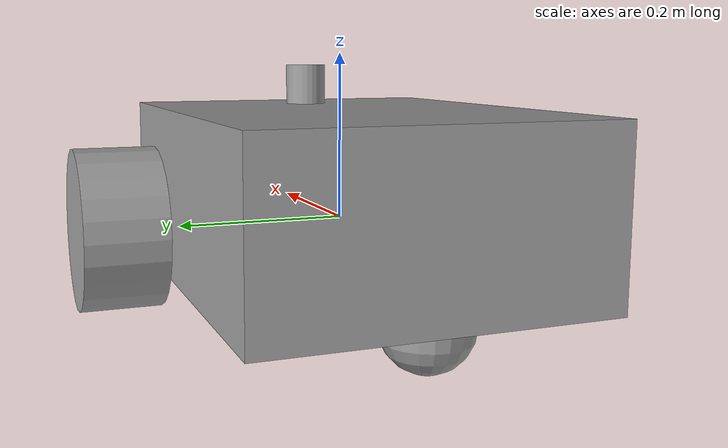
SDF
<?xml version='1.0'?>
<sdf version='1.7'>
  <model name='robot'>
    <link name='link_2'>
      <inertial>
        <mass>1</mass>
        <inertia>
          <ixx>0.145833</ixx>
          <ixy>0</ixy>
          <ixz>0</ixz>
          <iyy>0.145833</iyy>
          <iyz>0</iyz>
          <izz>0.125</izz>
        </inertia>
        <pose>0 0 0 0 -0 0</pose>
      </inertial>
      <pose>0.058 -0.241013 -0.015 1.5707 -0 0</pose>
      <gravity>1</gravity>
      <self_collide>0</self_collide>
      <kinematic>0</kinematic>
      <enable_wind>0</enable_wind>
      <visual name='visual'>
        <pose>0 0 0 0 -0 0</pose>
        <geometry>
          <cylinder>
            <radius>0.1</radius>
            <length>0.1</length>
          </cylinder>
        </geometry>
        <material>
          <lighting>1</lighting>
          <script>
            <uri>file://media/materials/scripts/gazebo.material</uri>
            <name>Gazebo/Black</name>
          </script>
          <shader type='pixel'>
            <normal_map>__default__</normal_map>
          </shader>
          <ambient>0.3 0.3 0.3 1</ambient>
          <diffuse>0.7 0.7 0.7 1</diffuse>
          <specular>0.01 0.01 0.01 1</specular>
          <emissive>0 0 0 1</emissive>
        </material>
        <transparency>0</transparency>
        <cast_shadows>1</cast_shadows>
      </visual>
      <collision name='collision'>
        <laser_retro>0</laser_retro>
        <max_contacts>10</max_contacts>
        <pose>0 0 0 0 -0 0</pose>
        <geometry>
          <cylinder>
            <radius>0.1</radius>
            <length>0.1</length>
          </cylinder>
        </geometry>
        <surface>
          <friction>
            <ode>
              <mu>1</mu>
              <mu2>1</mu2>
              <fdir1>0 0 0</fdir1>
              <slip1>0</slip1>
              <slip2>0</slip2>
            </ode>
            <torsional>
              <coefficient>1</coefficient>
              <patch_radius>0</patch_radius>
              <surface_radius>0</surface_radius>
              <use_patch_radius>1</use_patch_radius>
              <ode>
                <slip>0</slip>
              </ode>
            </torsional>
          </friction>
          <bounce>
            <restitution_coefficient>0</restitution_coefficient>
            <threshold>1e+06</threshold>
          </bounce>
          <contact>
            <collide_without_contact>0</collide_without_contact>
            <collide_without_contact_bitmask>1</collide_without_contact_bitmask>
            <collide_bitmask>1</collide_bitmask>
            <ode>
              <soft_cfm>0</soft_cfm>
              <soft_erp>0.2</soft_erp>
              <kp>1e+13</kp>
              <kd>1</kd>
              <max_vel>0.01</max_vel>
              <min_depth>0</min_depth>
            </ode>
            <bullet>
              <split_impulse>1</split_impulse>
              <split_impulse_penetration_threshold>-0.01</split_impulse_penetration_threshold>
              <soft_cfm>0</soft_cfm>
              <soft_erp>0.2</soft_erp>
              <kp>1e+13</kp>
              <kd>1</kd>
            </bullet>
          </contact>
        </surface>
      </collision>
    </link>
    <link name='link_2_clone'>
      <inertial>
        <mass>1</mass>
        <inertia>
          <ixx>0.145833</ixx>
          <ixy>0</ixy>
          <ixz>0</ixz>
          <iyy>0.145833</iyy>
          <iyz>0</iyz>
          <izz>0.125</izz>
        </inertia>
        <pose>0 0 0 0 -0 0</pose>
      </inertial>
      <pose>0.098 0.25901 -0.015 1.5707 -0 0</pose>
      <gravity>1</gravity>
      <self_collide>0</self_collide>
      <kinematic>0</kinematic>
      <enable_wind>0</enable_wind>
      <visual name='visual'>
        <pose>0 0 0 0 -0 0</pose>
        <geometry>
          <cylinder>
            <radius>0.1</radius>
            <length>0.1</length>
          </cylinder>
        </geometry>
        <material>
          <lighting>1</lighting>
          <script>
            <uri>file://media/materials/scripts/gazebo.material</uri>
            <name>Gazebo/Grey</name>
          </script>
          <shader type='pixel'>
            <normal_map>__default__</normal_map>
          </shader>
          <ambient>0.3 0.3 0.3 1</ambient>
          <diffuse>0.7 0.7 0.7 1</diffuse>
          <specular>0.01 0.01 0.01 1</specular>
          <emissive>0 0 0 1</emissive>
        </material>
        <transparency>0</transparency>
        <cast_shadows>1</cast_shadows>
      </visual>
      <collision name='collision'>
        <laser_retro>0</laser_retro>
        <max_contacts>10</max_contacts>
        <pose>0 0 0 0 -0 0</pose>
        <geometry>
          <cylinder>
            <radius>0.1</radius>
            <length>0.1</length>
          </cylinder>
        </geometry>
        <surface>
          <friction>
            <ode>
              <mu>1</mu>
              <mu2>1</mu2>
              <fdir1>0 0 0</fdir1>
              <slip1>0</slip1>
              <slip2>0</slip2>
            </ode>
            <torsional>
              <coefficient>1</coefficient>
              <patch_radius>0</patch_radius>
              <surface_radius>0</surface_radius>
              <use_patch_radius>1</use_patch_radius>
              <ode>
                <slip>0</slip>
              </ode>
            </torsional>
          </friction>
          <bounce>
            <restitution_coefficient>0</restitution_coefficient>
            <threshold>1e+06</threshold>
          </bounce>
          <contact>
            <collide_without_contact>0</collide_without_contact>
            <collide_without_contact_bitmask>1</collide_without_contact_bitmask>
            <collide_bitmask>1</collide_bitmask>
            <ode>
              <soft_cfm>0</soft_cfm>
              <soft_erp>0.2</soft_erp>
              <kp>1e+13</kp>
              <kd>1</kd>
              <max_vel>0.01</max_vel>
              <min_depth>0</min_depth>
            </ode>
            <bullet>
              <split_impulse>1</split_impulse>
              <split_impulse_penetration_threshold>-0.01</split_impulse_penetration_threshold>
              <soft_cfm>0</soft_cfm>
              <soft_erp>0.2</soft_erp>
              <kp>1e+13</kp>
              <kd>1</kd>
            </bullet>
          </contact>
        </surface>
      </collision>
    </link>
    <link name='link_3'>
      <inertial>
        <mass>1</mass>
        <inertia>
          <ixx>0.145833</ixx>
          <ixy>0</ixy>
          <ixz>0</ixz>
          <iyy>0.145833</iyy>
          <iyz>0</iyz>
          <izz>0.125</izz>
        </inertia>
        <pose>0 0 0 0 -0 0</pose>
      </inertial>
      <pose>0.098 0.009001 0.16 0 -0 0</pose>
      <gravity>1</gravity>
      <self_collide>0</self_collide>
      <kinematic>0</kinematic>
      <enable_wind>0</enable_wind>
      <visual name='visual'>
        <pose>0 0 0 0 -0 0</pose>
        <geometry>
          <cylinder>
            <radius>0.025</radius>
            <length>0.05</length>
          </cylinder>
        </geometry>
        <material>
          <lighting>1</lighting>
          <script>
            <uri>file://media/materials/scripts/gazebo.material</uri>
            <name>Gazebo/Grey</name>
          </script>
          <shader type='pixel'>
            <normal_map>__default__</normal_map>
          </shader>
          <ambient>0.3 0.3 0.3 1</ambient>
          <diffuse>0.7 0.7 0.7 1</diffuse>
          <specular>0.01 0.01 0.01 1</specular>
          <emissive>0 0 0 1</emissive>
        </material>
        <transparency>0</transparency>
        <cast_shadows>1</cast_shadows>
      </visual>
      <collision name='collision'>
        <laser_retro>0</laser_retro>
        <max_contacts>10</max_contacts>
        <pose>0 0 0 0 -0 0</pose>
        <geometry>
          <cylinder>
            <radius>0.025</radius>
            <length>0.05</length>
          </cylinder>
        </geometry>
        <surface>
          <friction>
            <ode>
              <mu>1</mu>
              <mu2>1</mu2>
              <fdir1>0 0 0</fdir1>
              <slip1>0</slip1>
              <slip2>0</slip2>
            </ode>
            <torsional>
              <coefficient>1</coefficient>
              <patch_radius>0</patch_radius>
              <surface_radius>0</surface_radius>
              <use_patch_radius>1</use_patch_radius>
              <ode>
                <slip>0</slip>
              </ode>
            </torsional>
          </friction>
          <bounce>
            <restitution_coefficient>0</restitution_coefficient>
            <threshold>1e+06</threshold>
          </bounce>
          <contact>
            <collide_without_contact>0</collide_without_contact>
            <collide_without_contact_bitmask>1</collide_without_contact_bitmask>
            <collide_bitmask>1</collide_bitmask>
            <ode>
              <soft_cfm>0</soft_cfm>
              <soft_erp>0.2</soft_erp>
              <kp>1e+13</kp>
              <kd>1</kd>
              <max_vel>0.01</max_vel>
              <min_depth>0</min_depth>
            </ode>
            <bullet>
              <split_impulse>1</split_impulse>
              <split_impulse_penetration_threshold>-0.01</split_impulse_penetration_threshold>
              <soft_cfm>0</soft_cfm>
              <soft_erp>0.2</soft_erp>
              <kp>1e+13</kp>
              <kd>1</kd>
            </bullet>
          </contact>
        </surface>
      </collision>
    </link>
    <link name='link_4'>
      <inertial>
        <mass>1</mass>
        <inertia>
          <ixx>0.166667</ixx>
          <ixy>0</ixy>
          <ixz>0</ixz>
          <iyy>0.166667</iyy>
          <iyz>0</iyz>
          <izz>0.166667</izz>
        </inertia>
        <pose>0 0 0 0 -0 0</pose>
      </inertial>
      <pose>-0.052 0.009001 0.035 0 -0 0</pose>
      <gravity>1</gravity>
      <self_collide>0</self_collide>
      <kinematic>0</kinematic>
      <enable_wind>0</enable_wind>
      <visual name='visual'>
        <pose>0 0 0 0 -0 0</pose>
        <geometry>
          <box>
            <size>0.5 0.4 0.2</size>
          </box>
        </geometry>
        <material>
          <lighting>1</lighting>
          <script>
            <uri>file://media/materials/scripts/gazebo.material</uri>
            <name>Gazebo/Grey</name>
          </script>
          <shader type='pixel'>
            <normal_map>__default__</normal_map>
          </shader>
          <ambient>0.3 0.3 0.3 1</ambient>
          <diffuse>0.7 0.7 0.7 1</diffuse>
          <specular>0.01 0.01 0.01 1</specular>
          <emissive>0 0 0 1</emissive>
        </material>
        <transparency>0</transparency>
        <cast_shadows>1</cast_shadows>
      </visual>
      <collision name='collision'>
        <laser_retro>0</laser_retro>
        <max_contacts>10</max_contacts>
        <pose>0 0 0 0 -0 0</pose>
        <geometry>
          <box>
            <size>0.5 0.4 0.2</size>
          </box>
        </geometry>
        <surface>
          <friction>
            <ode>
              <mu>1</mu>
              <mu2>1</mu2>
              <fdir1>0 0 0</fdir1>
              <slip1>0</slip1>
              <slip2>0</slip2>
            </ode>
            <torsional>
              <coefficient>1</coefficient>
              <patch_radius>0</patch_radius>
              <surface_radius>0</surface_radius>
              <use_patch_radius>1</use_patch_radius>
              <ode>
                <slip>0</slip>
              </ode>
            </torsional>
          </friction>
          <bounce>
            <restitution_coefficient>0</restitution_coefficient>
            <threshold>1e+06</threshold>
          </bounce>
          <contact>
            <collide_without_contact>0</collide_without_contact>
            <collide_without_contact_bitmask>1</collide_without_contact_bitmask>
            <collide_bitmask>1</collide_bitmask>
            <ode>
              <soft_cfm>0</soft_cfm>
              <soft_erp>0.2</soft_erp>
              <kp>1e+13</kp>
              <kd>1</kd>
              <max_vel>0.01</max_vel>
              <min_depth>0</min_depth>
            </ode>
            <bullet>
              <split_impulse>1</split_impulse>
              <split_impulse_penetration_threshold>-0.01</split_impulse_penetration_threshold>
              <soft_cfm>0</soft_cfm>
              <soft_erp>0.2</soft_erp>
              <kp>1e+13</kp>
              <kd>1</kd>
            </bullet>
          </contact>
        </surface>
      </collision>
    </link>
    <link name='link_5'>
      <inertial>
        <mass>1</mass>
        <inertia>
          <ixx>0.1</ixx>
          <ixy>0</ixy>
          <ixz>0</ixz>
          <iyy>0.1</iyy>
          <iyz>0</iyz>
          <izz>0.1</izz>
        </inertia>
        <pose>0 0 0 0 -0 0</pose>
      </inertial>
      <pose>-0.252 0.009001 -0.065 0 -0 0</pose>
      <gravity>1</gravity>
      <self_collide>0</self_collide>
      <kinematic>0</kinematic>
      <enable_wind>0</enable_wind>
      <visual name='visual'>
        <pose>0 0 0 0 -0 0</pose>
        <geometry>
          <sphere>
            <radius>0.05</radius>
          </sphere>
        </geometry>
        <material>
          <lighting>1</lighting>
          <script>
            <uri>file://media/materials/scripts/gazebo.material</uri>
            <name>Gazebo/Grey</name>
          </script>
          <shader type='pixel'>
            <normal_map>__default__</normal_map>
          </shader>
          <ambient>0.3 0.3 0.3 1</ambient>
          <diffuse>0.7 0.7 0.7 1</diffuse>
          <specular>0.01 0.01 0.01 1</specular>
          <emissive>0 0 0 1</emissive>
        </material>
        <transparency>0</transparency>
        <cast_shadows>1</cast_shadows>
      </visual>
      <collision name='collision'>
        <laser_retro>0</laser_retro>
        <max_contacts>10</max_contacts>
        <pose>0 0 0 0 -0 0</pose>
        <geometry>
          <sphere>
            <radius>0.05</radius>
          </sphere>
        </geometry>
        <surface>
          <friction>
            <ode>
              <mu>1</mu>
              <mu2>1</mu2>
              <fdir1>0 0 0</fdir1>
              <slip1>0</slip1>
              <slip2>0</slip2>
            </ode>
            <torsional>
              <coefficient>1</coefficient>
              <patch_radius>0</patch_radius>
              <surface_radius>0</surface_radius>
              <use_patch_radius>1</use_patch_radius>
              <ode>
                <slip>0</slip>
              </ode>
            </torsional>
          </friction>
          <bounce>
            <restitution_coefficient>0</restitution_coefficient>
            <threshold>1e+06</threshold>
          </bounce>
          <contact>
            <collide_without_contact>0</collide_without_contact>
            <collide_without_contact_bitmask>1</collide_without_contact_bitmask>
            <collide_bitmask>1</collide_bitmask>
            <ode>
              <soft_cfm>0</soft_cfm>
              <soft_erp>0.2</soft_erp>
              <kp>1e+13</kp>
              <kd>1</kd>
              <max_vel>0.01</max_vel>
              <min_depth>0</min_depth>
            </ode>
            <bullet>
              <split_impulse>1</split_impulse>
              <split_impulse_penetration_threshold>-0.01</split_impulse_penetration_threshold>
              <soft_cfm>0</soft_cfm>
              <soft_erp>0.2</soft_erp>
              <kp>1e+13</kp>
              <kd>1</kd>
            </bullet>
          </contact>
        </surface>
      </collision>
    </link>
    <joint name='link_4_JOINT_14' type='revolute'>
      <parent>link_4</parent>
      <child>link_2_clone</child>
      <pose>0 0 0 0 -0 0</pose>
      <axis>
        <xyz>0 0 1</xyz>
        <limit>
          <lower>-1.79769e+308</lower>
          <upper>1.79769e+308</upper>
          <effort>-1</effort>
          <velocity>-1</velocity>
        </limit>
        <dynamics>
          <spring_reference>0</spring_reference>
          <spring_stiffness>0</spring_stiffness>
          <damping>0</damping>
        </dynamics>
      </axis>
      <physics>
        <ode>
          <limit>
            <cfm>0</cfm>
            <erp>0.2</erp>
          </limit>
          <suspension>
            <cfm>0</cfm>
            <erp>0.2</erp>
          </suspension>
        </ode>
      </physics>
    </joint>
    <joint name='link_4_JOINT_15' type='revolute'>
      <parent>link_4</parent>
      <child>link_2</child>
      <pose>0 0 0 0 -0 0</pose>
      <axis>
        <xyz>0 0 1</xyz>
        <limit>
          <lower>-1.79769e+308</lower>
          <upper>1.79769e+308</upper>
          <effort>-1</effort>
          <velocity>-1</velocity>
        </limit>
        <dynamics>
          <spring_reference>0</spring_reference>
          <spring_stiffness>0</spring_stiffness>
          <damping>0</damping>
        </dynamics>
      </axis>
      <physics>
        <ode>
          <limit>
            <cfm>0</cfm>
            <erp>0.2</erp>
          </limit>
          <suspension>
            <cfm>0</cfm>
            <erp>0.2</erp>
          </suspension>
        </ode>
      </physics>
    </joint>
    <joint name='link_4_JOINT_18' type='ball'>
      <parent>link_4</parent>
      <child>link_5</child>
      <pose>0 0 0 0 -0 0</pose>
      <physics>
        <ode>
          <limit>
            <cfm>0</cfm>
            <erp>0.2</erp>
          </limit>
          <suspension>
            <cfm>0</cfm>
            <erp>0.2</erp>
          </suspension>
        </ode>
      </physics>
    </joint>
    <joint name='link_4_JOINT_20' type='fixed'>
      <parent>link_4</parent>
      <child>link_3</child>
      <pose>0 0 0 0 -0 0</pose>
      <physics>
        <ode>
          <limit>
            <cfm>0</cfm>
            <erp>0.2</erp>
          </limit>
          <suspension>
            <cfm>0</cfm>
            <erp>0.2</erp>
          </suspension>
        </ode>
      </physics>
    </joint>
    <static>0</static>
    <allow_auto_disable>1</allow_auto_disable>
  </model>
</sdf>
